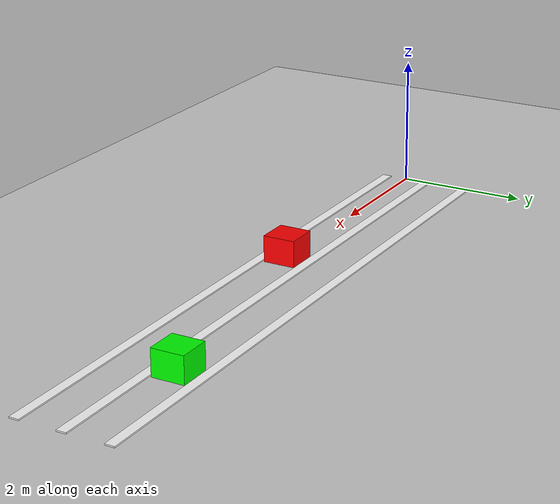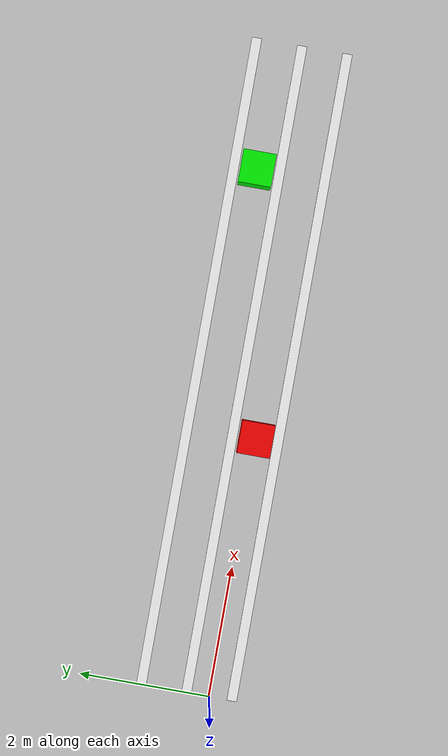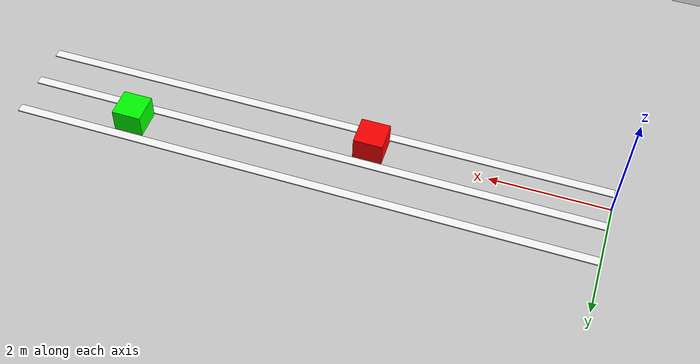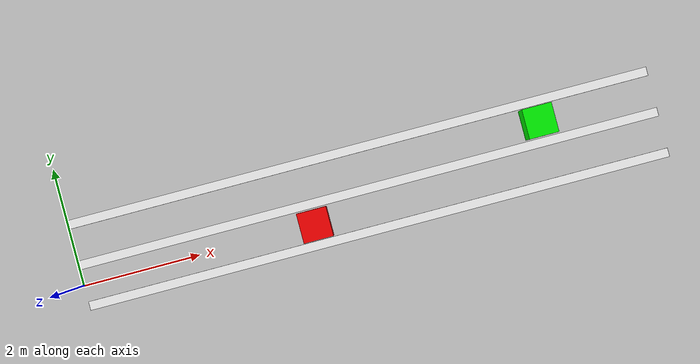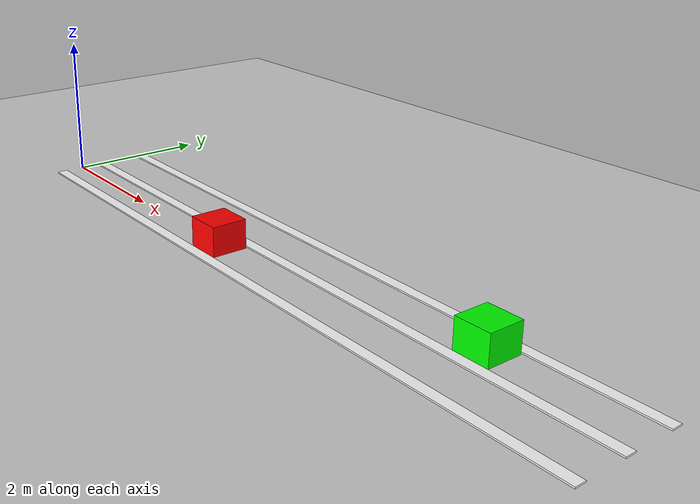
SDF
<?xml version="1.0" ?>
<sdf version="1.6">
  <world name="lane_change">

    <!-- Lighting -->
    <include>
      <uri>model://sun</uri>
    </include>

    <!-- Ground -->
    <include>
      <uri>model://ground_plane</uri>
    </include>

    <!-- Lane boundary lines -->
    <!-- Lane 1 left -->
    <model name="lane1_left">
      <static>true</static>
      <link name="link">
        <visual name="visual">
          <geometry>
            <box>
              <size>10 0.15 0.02</size>
            </box>
          </geometry>
          <material><diffuse>1 1 1 1</diffuse></material>
        </visual>
        <pose>5 0.35 0 0 0 0</pose>
      </link>
    </model>

    <!-- Lane 1 right -->
    <model name="lane1_right">
      <static>true</static>
      <link name="link">
        <visual name="visual">
          <geometry>
            <box>
              <size>10 0.15 0.02</size>
            </box>
          </geometry>
          <material><diffuse>1 1 1 1</diffuse></material>
        </visual>
        <pose>5 -0.35 0 0 0 0</pose>
      </link>
    </model>

    <!-- Lane 2 left -->
    <model name="lane2_left">
      <static>true</static>
      <link name="link">
        <visual name="visual">
          <geometry><box><size>10 0.15 0.02</size></box></geometry>
          <material><diffuse>1 1 1 1</diffuse></material>
        </visual>
        <pose>5 1.05 0 0 0 0</pose>
      </link>
    </model>

    <!-- Lane 2 right -->

    <!-- Obstacle 1 (Lane 1 at x = 4m) -->
    <model name="obstacle1">
      <static>true</static>
      <link name="link">
        <visual name="visual">
          <geometry>
            <box><size>0.5 0.5 0.5</size></box>
          </geometry>
          <material>
          <diffuse>1 0 0 1</diffuse>
          <ambient>1 0 0 1</ambient>
          <specular>1 0 0 1</specular>
          <emissive>1 0 0 1</emissive>
          </material>
        </visual>
        <pose>4 0 0.15 0 0 0</pose>
      </link>
    </model>

    <!-- Obstacle 2 (Lane 2 at x = 8m) -->
    <model name="obstacle2">
      <static>true</static>
      <link name="link">
        <visual name="visual">
          <geometry>
            <box><size>0.5 0.5 0.5</size></box>
          </geometry>
          <material>
          <diffuse>0 1 0 1</diffuse>
          <ambient>0 1 0 1</ambient>
          <specular>0 1 0 1</specular>
          <emissive>0 1 0 1</emissive>
          </material>
        </visual>
        <pose>8 0.7 0.15 0 0 0</pose>
      </link>
    </model>

  </world>
</sdf>
